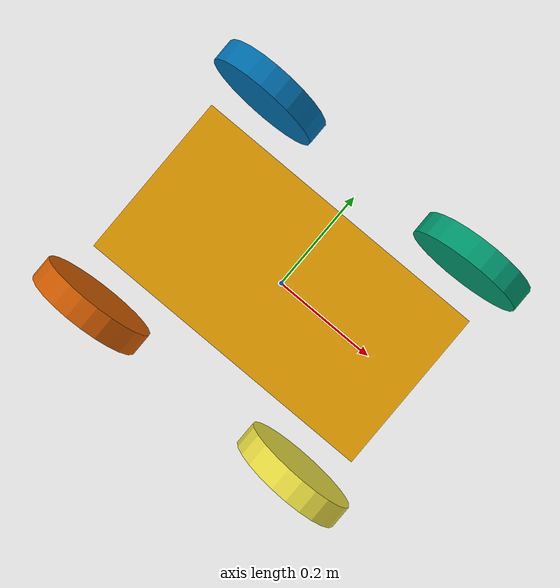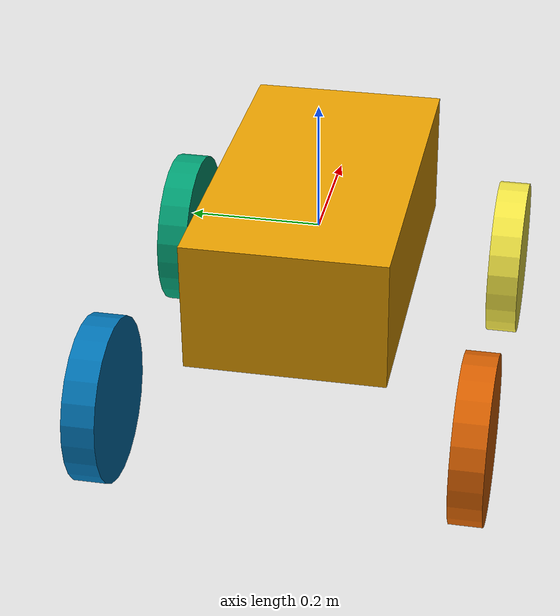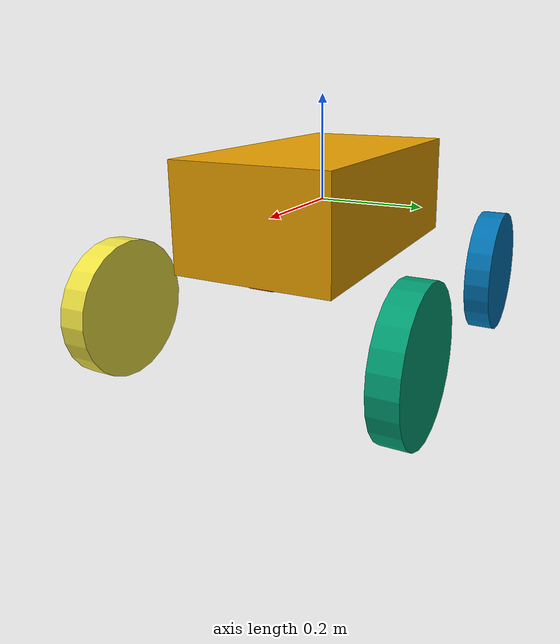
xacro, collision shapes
<?xml version="1.0"?>
<robot name="vector"
  xmlns:xacro="http://ros.org/wiki/xacro">

  <!-- Xacro Arguments -->
  <xacro:arg name="wheel_odom_topic" default="odometry/filtered"/>
  <xacro:arg name="camera_enabled" default="false"/>
  <xacro:arg name="two_d_lidar_enabled" default="false"/>
  <xacro:arg name="ground_truth_odometry" default="false"/>
  <xacro:arg name="is_simulation" default="true"/>

  <!-- Include utility macros and properties -->
  <xacro:include filename="$(find vector_description)/urdf/utils.urdf.xacro" />

  <!-- Include the model definition -->
  <xacro:include filename="$(find vector_description)/urdf/model.urdf.xacro" />

  <!-- Include the gazebo plugins -->
  <xacro:if value="$(arg is_simulation)">
    <xacro:include filename="$(find vector_description)/urdf/gazebo.urdf.xacro" />
  </xacro:if>

</robot>

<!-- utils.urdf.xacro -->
<robot xmlns:xacro="http://ros.org/wiki/xacro">

  <!-- Materials -->
  <material name="white">
    <color rgba="1 1 1 1" />
  </material>

  <material name="red">
    <color rgba="1 0 0 1" />
  </material>

  <material name="green">
    <color rgba="0 1 0 1" />
  </material>

  <material name="blue">
    <color rgba="0 0 1 1" />
  </material>

  <material name="yellow">
    <color rgba="1 1 0 1" />
  </material>

  <material name="black">
    <color rgba="0 0 0 1" />
  </material>

  <material name="SaxionGreen">
    <color rgba="0 0.612 0.510 1" />
  </material>

  <!-- Inertia Macros -->
  <xacro:macro name="box_inertia" params="m w h d">
    <inertial>
      <!-- Orientation may be adjusted based on your modeling convention -->
      <origin xyz="0 0 0" rpy="${pi/2} 0 ${pi/2}" />
      <mass value="${m}" />
      <inertia ixx="${(m/12) * (h*h + d*d)}" ixy="0.0" ixz="0.0" iyy="${(m/12) * (w*w + d*d)}" iyz="0.0" izz="${(m/12) * (w*w + h*h)}" />
    </inertial>
  </xacro:macro>

  <xacro:macro name="cylinder_inertia" params="m r h">
    <inertial>
      <origin xyz="0 0 0" rpy="${pi/2} 0 0" />
      <mass value="${m}" />
      <inertia ixx="${(m/12) * (3*r*r + h*h)}" ixy="0" ixz="0" iyy="${(m/12) * (3*r*r + h*h)}" iyz="0" izz="${(m/2) * (r*r)}" />
    </inertial>
  </xacro:macro>

  <!-- Wheel Macro -->
  <xacro:macro name="wheel" params="name x_offset y_offset z_offset is_right">
    <link name="${name}">
      <visual>
        <!-- Rotate the cylinder so its axis (default along z) aligns with the desired rolling axis -->
        <origin xyz="0 0 0" rpy="${pi} 0 ${pi/2}" />
        <geometry>
          <mesh filename="package://vector_description/meshes/vector_wheel.dae" />
        </geometry>
      </visual>
      <collision>
        <origin xyz="0 0 -0.023" rpy="0 0 ${pi/2}" />
        <geometry>
          <cylinder radius="${wheel_radius}" length="${wheel_thickness}" />
        </geometry>
        <surface>
          <friction>
            <ode>
              <mu>0.8</mu>
              <mu2>0.8</mu2>
            </ode>
          </friction>
        </surface>
      </collision>
      <!-- Use cylinder_inertia for the wheel (mass = 1.15) -->
      <xacro:cylinder_inertia m="0.3" r="${wheel_radius}" h="${wheel_thickness}" />
    </link>
    <joint name="${name}_joint" type="continuous">
      <parent link="base_link" />
      <child link="${name}" />

      <xacro:if value="${is_right}">
        <origin xyz="${x_offset} ${y_offset} ${z_offset}" rpy="${pi/2} 0 0" />
        <axis xyz="0 0 -1" />
      </xacro:if>
      <xacro:unless value="${is_right}">
        <origin xyz="${x_offset} ${y_offset} ${z_offset}" rpy="${-pi/2} 0 ${0}" />
        <axis xyz="0 0 1" />
      </xacro:unless>
      <limit effort="1.0" velocity="1000000000"/>
      <dynamics damping="0.00000000000000000001" friction="0.0000000001"/>
    </joint>
  </xacro:macro>

</robot>

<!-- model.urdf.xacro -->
<robot name="vector" xmlns:xacro="http://ros.org/wiki/xacro">
    <!-- Xacro Properties -->
    <!-- TODO: Use correct dimensions -->
    <!-- Base dimensions -->
    <xacro:property name="base_length" value="0.55" />         <!-- Length of the base -->
    <xacro:property name="base_width" value="0.3" />          <!-- Width of the base -->
    <xacro:property name="base_height" value="0.2" />         <!-- Height of the base -->
    <xacro:property name="base_ground_clearance" value="0.2" /> <!-- Distance from ground to base bottom -->
    <!-- Wheel placement (symmetric) -->
    <xacro:property name="wheel_base" value="0.53" />          <!-- Distance between front and back wheels -->
    <xacro:property name="wheel_track" value="0.555" />         <!-- Distance between left and right wheels -->
    <!-- Wheel dimensions -->
    <xacro:property name="wheel_radius" value="0.127" />   <!-- 10 inches - 0.254 meters -->
    <xacro:property name="wheel_thickness" value="0.05" /> <!-- 2.5 inches - 0.0635 meters -->

    <!-- Base Link Definition -->
    <link name="base_link">
        <visual>
            <!-- Raise the base so its bottom is at ground clearance -->
            <origin xyz="0 0 0" rpy="${-pi/2} 0 0" />
            <geometry>
                <mesh filename="package://vector_description/meshes/vector_base.dae" />
            </geometry>
        </visual>
        <collision>
            <origin xyz="0 0 0" rpy="0 0 0" />
            <geometry>
                <box size="${base_length} ${base_width} ${base_height}" />
            </geometry>
        </collision>
        <!-- Use box_inertia macro for base_link (mass = 10) -->
        <xacro:box_inertia m="1" w="${base_width}" h="${base_height}" d="${base_length}" />
    </link>

    <!-- Base Footprint Link -->
    <link name="base_footprint">
    </link>

    <!-- Base Footprint Joint -->
    <joint name="base_link_joint" type="fixed">
        <parent link="base_link" />
        <child link="base_footprint" />
        <origin xyz="0 0 ${-(base_ground_clearance + base_height/2)}" rpy="0 0 0" />
    </joint>

    <!-- Instantiate Four Wheels -->
    <xacro:wheel name="front_left_wheel" x_offset="${wheel_base/2}" y_offset="${wheel_track/2 + wheel_thickness/2}"
        z_offset="${-base_ground_clearance + 0.02 }" is_right="false" />
    <xacro:wheel name="front_right_wheel" x_offset="${wheel_base/2}" y_offset="${-(wheel_track/2 +  wheel_thickness/2)}"
        z_offset="${-base_ground_clearance + 0.02 }" is_right="true" />
    <xacro:wheel name="rear_left_wheel" x_offset="${-wheel_base/2}" y_offset="${wheel_track/2 + wheel_thickness/2}"
        z_offset="${-base_ground_clearance + 0.02 }" is_right="false" />
    <xacro:wheel name="rear_right_wheel" x_offset="${-wheel_base/2}" y_offset="${-(wheel_track/2 +  wheel_thickness/2)}"
        z_offset="${-base_ground_clearance + 0.02 }" is_right="true" />

</robot>

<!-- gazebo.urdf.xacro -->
<robot name="vector"
    xmlns:xacro="http://www.ros.org/wiki/xacro">

    <!-- ........................... INCLUDE PLUGINS ................................... -->

    <xacro:if value="$(arg camera_enabled)">
        <xacro:include filename="$(find vector_description)/urdf/sensors/rgbd_camera.xacro" />
    </xacro:if>

    <xacro:if value="$(arg two_d_lidar_enabled)">
        <xacro:include filename="$(find vector_description)/urdf/sensors/lidar.xacro" />
    </xacro:if>

    <xacro:include filename="$(find vector_description)/urdf/sensors/battery.xacro" />
    <xacro:include filename="$(find vector_description)/urdf/sensors/diff_drive.xacro" />
    <xacro:include filename="$(find vector_description)/urdf/sensors/imu.xacro" />

    <!-- ........................... SENSOR PLUGIN ................................... -->
    <gazebo>
        <plugin filename="ignition-gazebo-sensors-system" name="ignition::gazebo::systems::Sensors">
            <render_engine>ogre2</render_engine>
        </plugin>

        <plugin filename="ignition-gazebo-imu-system" name="ignition::gazebo::systems::Imu">
        </plugin>

        <plugin filename="ignition-gazebo-joint-state-publisher-system" name="ignition::gazebo::systems::JointStatePublisher">
            <topic>joint_states</topic>
        </plugin>

    </gazebo>

</robot>

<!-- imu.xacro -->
<robot xmlns:xacro="http://www.ros.org/wiki/xacro" name="vector">

    <!-- IMU Link -->
    <link name="imu_link">
        <inertial>
            <origin xyz="0 0 0" rpy="0 0 0"/>
            <mass value="0.01"/>
            <inertia ixx="0.0001" ixy="0.0" ixz="0.0" iyy="0.0001" iyz="0.0" izz="0.0001"/>
        </inertial>
        <visual>
            <origin xyz="0 0 0" rpy="0 0 0"/>
            <geometry>
                <box size="0.05 0.05 0.01"/>
            </geometry>
        </visual>
        <collision>
            <origin xyz="0 0 0" rpy="0 0 0"/>
            <geometry>
                <box size="0.05 0.05 0.01"/>
            </geometry>
        </collision>
    </link>

    <!-- IMU Joint  -->
    <joint name="imu_joint" type="fixed">
        <parent link="base_link"/>
        <child link="imu_link"/>
        <origin xyz="0 0 ${-(base_height/2 + 0.01)}" rpy="0 0 0"/>
    </joint>

    <gazebo reference="imu_link">
        <sensor name="imu_sensor" type="imu">
            <always_on>true</always_on>
            <update_rate>100</update_rate>
            <ignition_frame_id>imu_link</ignition_frame_id>
            <visualize>true</visualize>
            <topic>imu/data</topic>
        </sensor>
    </gazebo>
</robot>
